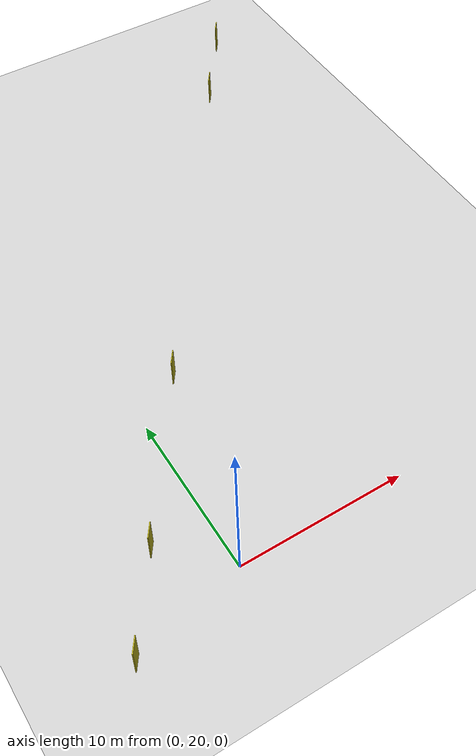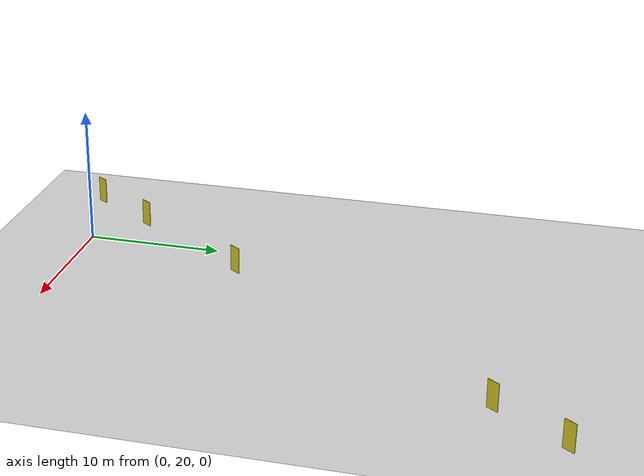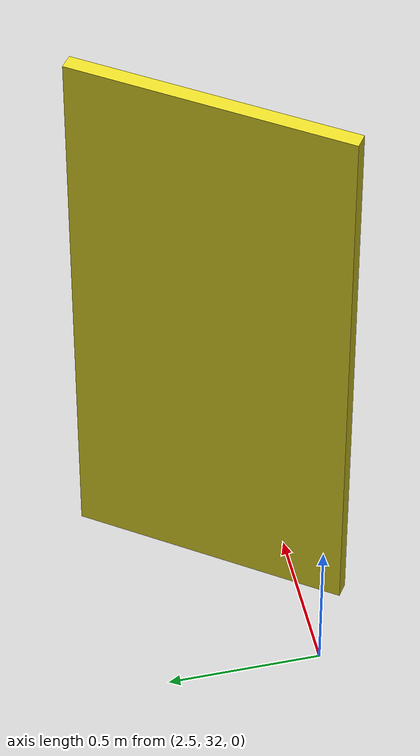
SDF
<sdf version="1.6">
 <world name="floorplan:icra_brsu_building_c_level_2_with_objects">
  <gravity>0 0 -9.8</gravity>
  <physics default="0" name="default_physics" type="ode">
   <max_step_size>0.001</max_step_size>
   <real_time_factor>1</real_time_factor>
   <real_time_update_rate>1000</real_time_update_rate>
  </physics>
  <scene><ambient>0.6 0.6 0.6 1</ambient><background>0.4 0.4 0.4 1</background><shadows>false</shadows></scene>
  <include><uri>model://sun</uri></include>
  <include><uri>model://ground_plane</uri></include>
  <include>
   <name>door-instance-2</name>
   <uri>model://door</uri>
   <static>false</static>
   <pose>-3.0147589368621652 23.633212933340452 0.0 0.0 -0.0 2.5307274153917776</pose>
  </include>
  <include>
   <name>door-instance-3</name>
   <uri>model://door</uri>
   <static>false</static>
   <pose>3.2945818629993298 32.64388542051938 0.0 0.0 -0.0 2.5307274153917776</pose>
  </include>
  <include>
   <name>door-instance-4</name>
   <uri>model://door</uri>
   <static>false</static>
   <pose>17.748708059045665 53.28651693660201 0.0 0.0 -0.0 2.5307274153917776</pose>
  </include>
  <include>
   <name>door-instance-5</name>
   <uri>model://door</uri>
   <static>false</static>
   <pose>21.190166677151932 58.201429202335966 0.0 0.0 -0.0 2.5307274153917776</pose>
  </include>
  <include>
   <name>door-instance-1</name>
   <uri>model://door</uri>
   <static>false</static>
   <pose>-6.456217554968435 18.71830066760649 0.0 0.0 -0.0 2.5307274153917776</pose>
  </include>
 </world>
</sdf>

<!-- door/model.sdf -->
<sdf version="1.4">
<model name="door:door">
<pose>0 0 0 0 0 0</pose>
<static>false</static>

<link name="door:door-body">
<pose>0.0 0.49000000000000005 1.0 0.0 -0.0 0.0</pose>
<inertial>
<mass>1.0</mass>
<inertia>
<ixx>0.4069</ixx>
<ixy>0.0</ixy>
<ixz>0.0</ixz>
<iyy>0.3322</iyy>
<iyz>0.0</iyz>
<izz>0.0751</izz>
</inertia>
</inertial>
<collision name="collision">
<geometry>
<box>
<size>0.05 0.93 1.98</size>
</box>
</geometry>
</collision>
<visual name="visual">
<geometry>
<box>
<size>0.05 0.93 1.98</size>
</box>
</geometry><material><script><name>Gazebo/DarkYellow</name></script></material></visual>
</link>

<joint type="revolute" name="door:joint-door-hinge">
<pose frame="door:door-hinge">-0.025 0.025 0.995 0.0 -0.0 0.0</pose>
<child>door:door-body</child>
<parent>door:door-hinge</parent>
<axis>
<xyz>0 0 1</xyz>

<limit>
<lower>0.0</lower>
<upper>2.0</upper>
</limit>

</axis>
</joint>

</model>
</sdf>
